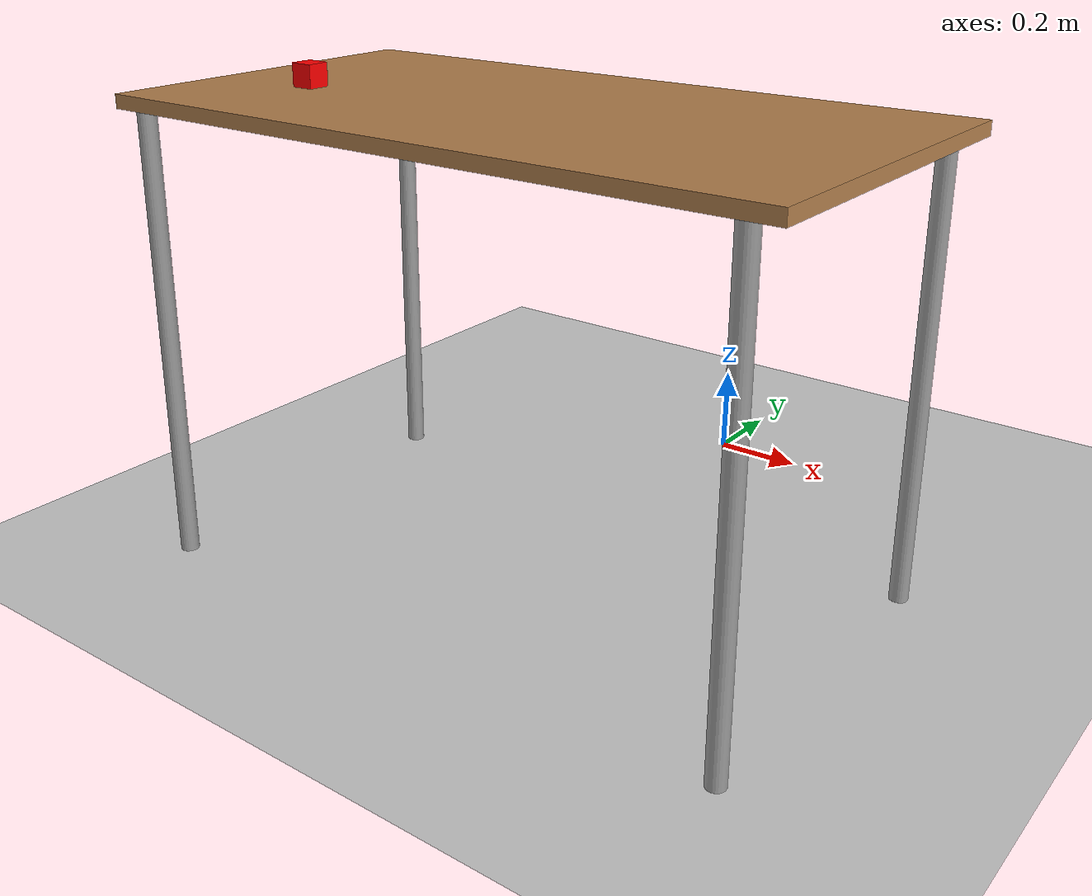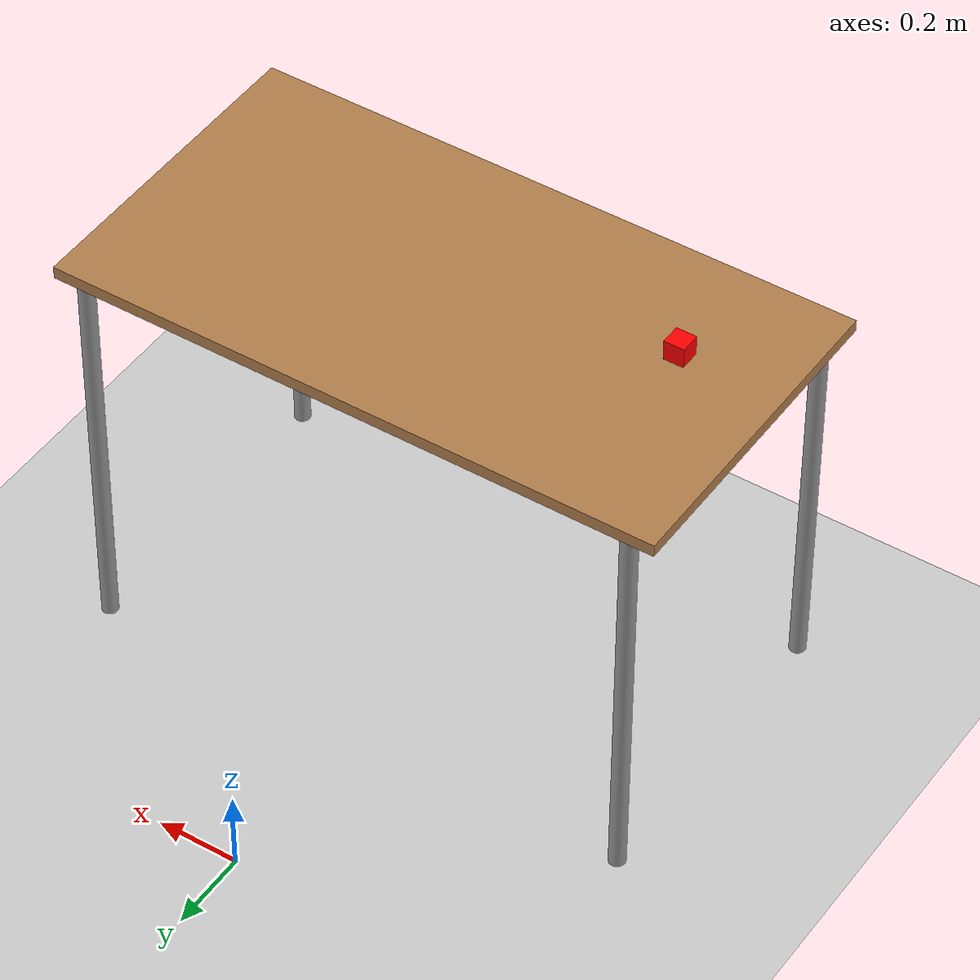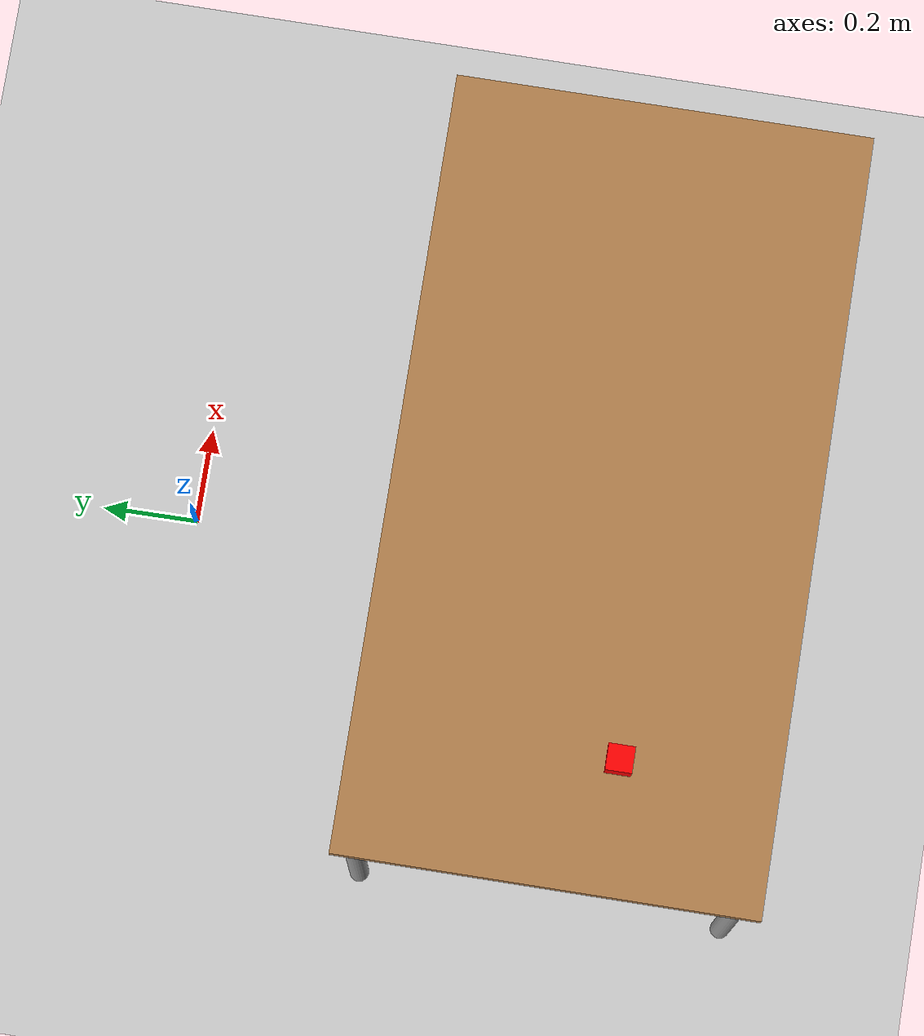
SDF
<?xml version="1.0" ?>
<sdf version="1.4">
  <world name="default">
    <include>
      <uri>model://ground_plane</uri>
    </include>
    <include>
      <uri>model://sun</uri>
    </include>

    <include>
      <uri>model://table</uri>
      <name>table</name>
      <pose>0.0 -0.84 0 0 0 0</pose>
      <surface>
        <friction>
          <ode>
            <mu>0.01</mu>
            <mu2>0.01</mu2>
          </ode>
        </friction>
      </surface>
    </include>

    <model name="target_cube">
      <pose>-0.5 -0.94 1.04 0 0 0</pose>
      <link name="link">
        <inertial>
          <mass>0.2</mass>
          <inertia>
            <ixx>0.000083333</ixx><ixy>0</ixy><ixz>0</ixz>
            <iyy>0.000083333</iyy><iyz>0</iyz>
            <izz>0.000083333</izz>
          </inertia>
        </inertial>
        <collision name="collision">
          <geometry>
            <box>
              <size>0.05 0.05 0.05</size>
            </box>
          </geometry>
          <surface>
            <friction>
              <ode>
                <mu>20.0</mu>
                <mu2>20.0</mu2>
              </ode>
            </friction>
            <contact>
              <ode>
                <kp>100000.0</kp>
                <kd>100.0</kd>
                <min_depth>0.005</min_depth>
                <maxVel>0.01</maxVel>
              </ode>
            </contact>
          </surface>
        </collision>
        <visual name="visual">
          <geometry>
            <box>
              <size>0.05 0.05 0.05</size>
            </box>
          </geometry>
          <material>
            <ambient>1 0 0 1</ambient>
            <diffuse>1 0 0 1</diffuse>
          </material>
        </visual>
      </link>
    </model>

    <physics type="ode">
      <max_step_size>0.001</max_step_size>
      <real_time_factor>1</real_time_factor>
      <real_time_update_rate>1000</real_time_update_rate>
      <gravity>0 0 -9.81</gravity>
    </physics>
    <plugin name="gazebo_link_attacher" filename="libgazebo_link_attacher.so"/>
  </world>
</sdf>

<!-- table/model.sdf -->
<sdf version="1.5">
  <model name="table">
    <static>true</static>
    <link name="link">
      <collision name="surface">
        <pose>0 0 1.0 0 0 0</pose>
        <geometry>
          <box>
            <size>1.5 0.8 0.03</size>
          </box>
        </geometry>
        <surface>
          <friction>
            <ode>
              <mu>0.6</mu>
              <mu2>0.6</mu2>
            </ode>
          </friction>
        </surface>
      </collision>
      <visual name="visual1">
        <pose>0 0 1.0 0 0 0</pose>
        <geometry>
          <box>
            <size>1.5 0.8 0.03</size>
          </box>
        </geometry>
        <material>
          <script>
            <uri>model://media/materials/scripts/gazebo.material</uri>
            <name>Gazebo/Wood</name>
          </script>
        </material>
      </visual>
      <collision name="front_left_leg">
        <pose>0.68 0.38 0.5 0 0 0</pose>
        <geometry>
          <cylinder>
            <radius>0.02</radius>
            <length>1.0</length>
          </cylinder>
        </geometry>
      </collision>
      <visual name="front_left_leg">
        <pose>0.68 0.38 0.5 0 0 0</pose>
        <geometry>
          <cylinder>
            <radius>0.02</radius>
            <length>1.0</length>
          </cylinder>
        </geometry>
        <material>
          <script>
            <uri>model://media/materials/scripts/gazebo.material</uri>
            <name>Gazebo/Grey</name>
          </script>
        </material>
      </visual>
      <collision name="front_right_leg">
        <pose>0.68 -0.38 0.5 0 0 0</pose>
        <geometry>
          <cylinder>
            <radius>0.02</radius>
            <length>1.0</length>
          </cylinder>
        </geometry>
      </collision>
      <visual name="front_right_leg">
        <pose>0.68 -0.38 0.5 0 0 0</pose>
        <geometry>
          <cylinder>
            <radius>0.02</radius>
            <length>1.0</length>
          </cylinder>
        </geometry>
        <material>
          <script>
            <uri>model://media/materials/scripts/gazebo.material</uri>
            <name>Gazebo/Grey</name>
          </script>
        </material>
      </visual>
      <collision name="back_right_leg">
        <pose>-0.68 -0.38 0.5 0 0 0</pose>
        <geometry>
          <cylinder>
            <radius>0.02</radius>
            <length>1.0</length>
          </cylinder>
        </geometry>
      </collision>
      <visual name="back_right_leg">
        <pose>-0.68 -0.38 0.5 0 0 0</pose>
        <geometry>
          <cylinder>
            <radius>0.02</radius>
            <length>1.0</length>
          </cylinder>
        </geometry>
        <material>
          <script>
            <uri>model://media/materials/scripts/gazebo.material</uri>
            <name>Gazebo/Grey</name>
          </script>
        </material>
      </visual>
      <collision name="back_left_leg">
        <pose>-0.68 0.38 0.5 0 0 0</pose>
        <geometry>
          <cylinder>
            <radius>0.02</radius>
            <length>1.0</length>
          </cylinder>
        </geometry>
      </collision>
      <visual name="back_left_leg">
        <pose>-0.68 0.38 0.5 0 0 0</pose>
        <geometry>
          <cylinder>
            <radius>0.02</radius>
            <length>1.0</length>
          </cylinder>
        </geometry>
        <material>
          <script>
            <uri>model://media/materials/scripts/gazebo.material</uri>
            <name>Gazebo/Grey</name>
          </script>
        </material>
      </visual>
    </link>
  </model>
</sdf>
